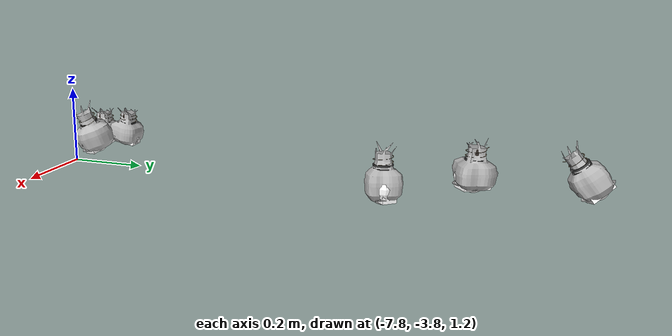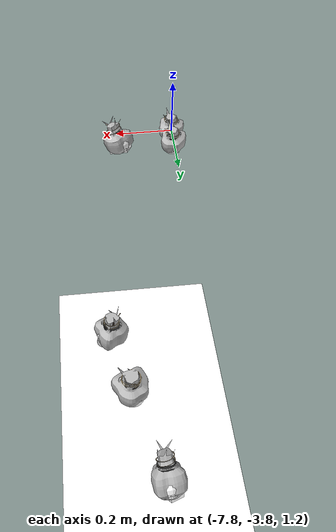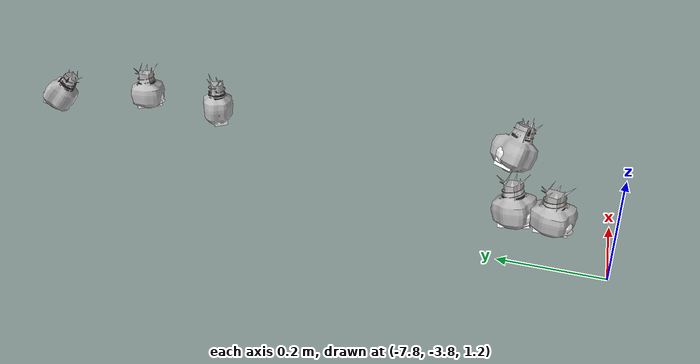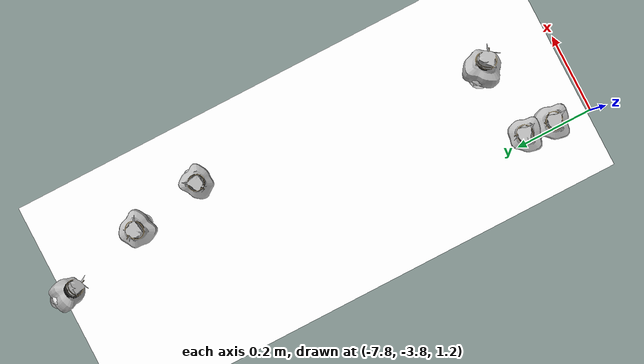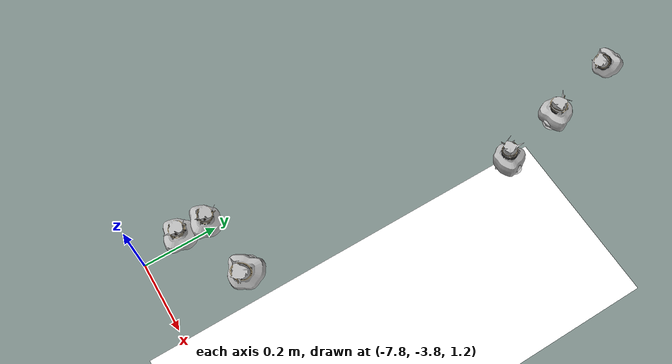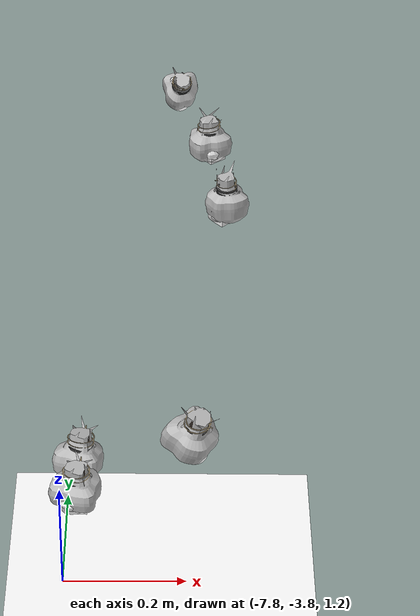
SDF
<sdf version="1.11">
 <world name="peach_orchard">
  <model name="ground">
   <static>true</static>
   <link name="link">
    <visual name="soil">
     <geometry><plane><normal>0 0 1</normal><size>32 22</size></plane></geometry>
     <material>
      <ambient>1 1 1 1</ambient>
      <diffuse>1 1 1 1</diffuse>
      <specular>0.1 0.1 0.1 1</specular>
      <pbr>
       <metal>
        <albedo_map>textures/soil_albedo.png</albedo_map>
        <normal_map type="tangent">textures/soil_normal.png</normal_map>
        <roughness>0.95</roughness>
        <metalness>0</metalness>
       </metal>
      </pbr>
     </material>
    </visual>
    <collision name="c_soil">
     <geometry><plane><normal>0 0 1</normal><size>32 22</size></plane></geometry>
    </collision>
   </link>
  </model>
  <model name="peach_tree_r0_t1_03">
   <pose>-7.60243 -3.58735 1.30034 0 0.37184 -0.78022</pose>
   <static>true</static>
   <link name="bag">
    <visual name="bag_mesh">
     <pose>0 0 0.0472823 0 0 -0</pose>
     <geometry>
      <mesh><uri>model://peach_sim/meshes/bagged_peach.glb</uri><scale>1.06944 1.30967 1.0746</scale></mesh>
     </geometry>
    </visual>
    <visual name="body">
     <pose>0 0 0.0292823 0 0 0</pose>
     <geometry><ellipsoid><radii>0.040104 0.0340513 0.0316248</radii></ellipsoid></geometry>
     <material>
      <ambient>1 1 1 1</ambient>
      <diffuse>1 1 1 1</diffuse>
      <specular>0.1 0.1 0.1 1</specular>
      <pbr>
       <metal>
        <albedo_map>textures/paper_bag_albedo.png</albedo_map>
        <normal_map type="tangent">textures/paper_bag_normal.png</normal_map>
        <roughness>0.72</roughness>
        <metalness>0</metalness>
       </metal>
      </pbr>
     </material>
    </visual>
    <visual name="bottom_fold">
     <pose>0 0 0.012 0 0 0.35</pose>
     <geometry><box><size>0.0621612 0.0391591 0.022</size></box></geometry>
     <material>
      <ambient>1 1 1 1</ambient>
      <diffuse>1 1 1 1</diffuse>
      <specular>0.1 0.1 0.1 1</specular>
      <pbr>
       <metal>
        <albedo_map>textures/paper_bag_albedo.png</albedo_map>
        <normal_map type="tangent">textures/paper_bag_normal.png</normal_map>
        <roughness>0.8</roughness>
        <metalness>0</metalness>
       </metal>
      </pbr>
     </material>
    </visual>
    <visual name="fruit">
     <pose>0 0 0.0180766 0 0 0</pose>
     <geometry><sphere><radius>0.0250396</radius></sphere></geometry>
     <material>
      <ambient>1 1 1 1</ambient>
      <diffuse>1 1 1 1</diffuse>
      <specular>0.1 0.1 0.1 1</specular>
      <pbr>
       <metal>
        <albedo_map>textures/fruit_skin_albedo.png</albedo_map>
        <normal_map type="tangent">textures/fruit_skin_normal.png</normal_map>
        <roughness>0.55</roughness>
        <metalness>0</metalness>
       </metal>
      </pbr>
     </material>
    </visual>
    <visual name="neck">
     <pose>0 0 0.0675645 0 0 0</pose>
     <geometry><cylinder><radius>0.013</radius><length>0.018</length></cylinder></geometry>
     <material>
      <ambient>1 1 1 1</ambient>
      <diffuse>1 1 1 1</diffuse>
      <specular>0.1 0.1 0.1 1</specular>
      <pbr>
       <metal>
        <albedo_map>textures/paper_bag_albedo.png</albedo_map>
        <normal_map type="tangent">textures/paper_bag_normal.png</normal_map>
        <roughness>0.75</roughness>
        <metalness>0</metalness>
       </metal>
      </pbr>
     </material>
    </visual>
    <visual name="gather">
     <pose>0 0 0.0485645 0 0 0</pose>
     <geometry><cylinder><radius>0.019</radius><length>0.02</length></cylinder></geometry>
     <material>
      <ambient>1 1 1 1</ambient>
      <diffuse>1 1 1 1</diffuse>
      <specular>0.1 0.1 0.1 1</specular>
      <pbr>
       <metal>
        <albedo_map>textures/paper_bag_albedo.png</albedo_map>
        <normal_map type="tangent">textures/paper_bag_normal.png</normal_map>
        <roughness>0.8</roughness>
        <metalness>0</metalness>
       </metal>
      </pbr>
     </material>
    </visual>
    <visual name="inner_paper">
     <pose>0 0 0.0725645 0 0 0</pose>
     <geometry><cylinder><radius>0.01</radius><length>0.008</length></cylinder></geometry>
     <material>
      <ambient>0.180392 0.14902 0.133333 1</ambient>
      <diffuse>0.180392 0.14902 0.133333 1</diffuse>
      <specular>0.1 0.1 0.1 1</specular>
     </material>
    </visual>
    <visual name="wire_0">
     <pose>0 0 0.0625645 0 0 0</pose>
     <geometry><cylinder><radius>0.0205</radius><length>0.0035</length></cylinder></geometry>
     <material>
      <ambient>0.25 0.25 0.25 1</ambient>
      <diffuse>0.25 0.25 0.25 1</diffuse>
      <specular>0.1 0.1 0.1 1</specular>
     </material>
    </visual>
    <visual name="wire_1">
     <pose>0 0 0.0695645 0 0 0</pose>
     <geometry><cylinder><radius>0.0205</radius><length>0.0035</length></cylinder></geometry>
     <material>
      <ambient>0.25 0.25 0.25 1</ambient>
      <diffuse>0.25 0.25 0.25 1</diffuse>
      <specular>0.1 0.1 0.1 1</specular>
     </material>
    </visual>
    <visual name="wire_tail">
     <pose>0.01 0 0.0705645 0 0.521618 0</pose>
     <geometry><cylinder><radius>0.0012</radius><length>0.026</length></cylinder></geometry>
     <material>
      <ambient>0.25 0.25 0.25 1</ambient>
      <diffuse>0.25 0.25 0.25 1</diffuse>
      <specular>0.1 0.1 0.1 1</specular>
     </material>
    </visual>
    <collision name="c_body">
     <pose>0 0 0.0292823 0 0 0</pose>
     <geometry><cylinder><radius>0.040104</radius><length>0.0585645</length></cylinder></geometry>
    </collision>
   </link>
  </model>
  <model name="peach_tree_r0_t1_10">
   <pose>-7.78 -3.68874 1.27 0 0.00574695 1.19921</pose>
   <static>true</static>
   <link name="bag">
    <visual name="bag_mesh">
     <pose>0 0 0.0381638 0 0 0</pose>
     <geometry>
      <mesh><uri>model://peach_sim/meshes/bagged_peach.glb</uri><scale>1.04882 1.20694 0.86736</scale></mesh>
     </geometry>
    </visual>
    <visual name="body">
     <pose>0 0 0.0201638 0 0 0</pose>
     <geometry><ellipsoid><radii>0.0393308 0.0313805 0.021777</radii></ellipsoid></geometry>
     <material>
      <ambient>1 1 1 1</ambient>
      <diffuse>1 1 1 1</diffuse>
      <specular>0.1 0.1 0.1 1</specular>
      <pbr>
       <metal>
        <albedo_map>textures/paper_bag_albedo.png</albedo_map>
        <normal_map type="tangent">textures/paper_bag_normal.png</normal_map>
        <roughness>0.72</roughness>
        <metalness>0</metalness>
       </metal>
      </pbr>
     </material>
    </visual>
    <visual name="bottom_fold">
     <pose>0 0 0.012 0 0 0.35</pose>
     <geometry><box><size>0.0609627 0.0360876 0.022</size></box></geometry>
     <material>
      <ambient>1 1 1 1</ambient>
      <diffuse>1 1 1 1</diffuse>
      <specular>0.1 0.1 0.1 1</specular>
      <pbr>
       <metal>
        <albedo_map>textures/paper_bag_albedo.png</albedo_map>
        <normal_map type="tangent">textures/paper_bag_normal.png</normal_map>
        <roughness>0.8</roughness>
        <metalness>0</metalness>
       </metal>
      </pbr>
     </material>
    </visual>
    <visual name="fruit">
     <pose>0 0 0.0179964 0 0 0</pose>
     <geometry><sphere><radius>0.0249563</radius></sphere></geometry>
     <material>
      <ambient>1 1 1 1</ambient>
      <diffuse>1 1 1 1</diffuse>
      <specular>0.1 0.1 0.1 1</specular>
      <pbr>
       <metal>
        <albedo_map>textures/fruit_skin_albedo.png</albedo_map>
        <normal_map type="tangent">textures/fruit_skin_normal.png</normal_map>
        <roughness>0.55</roughness>
        <metalness>0</metalness>
       </metal>
      </pbr>
     </material>
    </visual>
    <visual name="neck">
     <pose>0 0 0.0493277 0 0 0</pose>
     <geometry><cylinder><radius>0.013</radius><length>0.018</length></cylinder></geometry>
     <material>
      <ambient>1 1 1 1</ambient>
      <diffuse>1 1 1 1</diffuse>
      <specular>0.1 0.1 0.1 1</specular>
      <pbr>
       <metal>
        <albedo_map>textures/paper_bag_albedo.png</albedo_map>
        <normal_map type="tangent">textures/paper_bag_normal.png</normal_map>
        <roughness>0.75</roughness>
        <metalness>0</metalness>
       </metal>
      </pbr>
     </material>
    </visual>
    <visual name="gather">
     <pose>0 0 0.0303277 0 0 0</pose>
     <geometry><cylinder><radius>0.019</radius><length>0.02</length></cylinder></geometry>
     <material>
      <ambient>1 1 1 1</ambient>
      <diffuse>1 1 1 1</diffuse>
      <specular>0.1 0.1 0.1 1</specular>
      <pbr>
       <metal>
        <albedo_map>textures/paper_bag_albedo.png</albedo_map>
        <normal_map type="tangent">textures/paper_bag_normal.png</normal_map>
        <roughness>0.8</roughness>
        <metalness>0</metalness>
       </metal>
      </pbr>
     </material>
    </visual>
    <visual name="inner_paper">
     <pose>0 0 0.0543277 0 0 0</pose>
     <geometry><cylinder><radius>0.01</radius><length>0.008</length></cylinder></geometry>
     <material>
      <ambient>0.180392 0.14902 0.133333 1</ambient>
      <diffuse>0.180392 0.14902 0.133333 1</diffuse>
      <specular>0.1 0.1 0.1 1</specular>
     </material>
    </visual>
    <visual name="wire_0">
     <pose>0 0 0.0443277 0 0 0</pose>
     <geometry><cylinder><radius>0.0205</radius><length>0.0035</length></cylinder></geometry>
     <material>
      <ambient>0.25 0.25 0.25 1</ambient>
      <diffuse>0.25 0.25 0.25 1</diffuse>
      <specular>0.1 0.1 0.1 1</specular>
     </material>
    </visual>
    <visual name="wire_1">
     <pose>0 0 0.0513277 0 0 0</pose>
     <geometry><cylinder><radius>0.0205</radius><length>0.0035</length></cylinder></geometry>
     <material>
      <ambient>0.25 0.25 0.25 1</ambient>
      <diffuse>0.25 0.25 0.25 1</diffuse>
      <specular>0.1 0.1 0.1 1</specular>
     </material>
    </visual>
    <visual name="wire_tail">
     <pose>0.01 0 0.0523277 0 0.521618 0</pose>
     <geometry><cylinder><radius>0.0012</radius><length>0.026</length></cylinder></geometry>
     <material>
      <ambient>0.25 0.25 0.25 1</ambient>
      <diffuse>0.25 0.25 0.25 1</diffuse>
      <specular>0.1 0.1 0.1 1</specular>
     </material>
    </visual>
    <collision name="c_body">
     <pose>0 0 0.0201638 0 0 0</pose>
     <geometry><cylinder><radius>0.0393308</radius><length>0.0403277</length></cylinder></geometry>
    </collision>
   </link>
  </model>
  <model name="peach_tree_r0_t1_11">
   <pose>-7.78 -3.62434 1.27 0 0.177441 1.18283</pose>
   <static>true</static>
   <link name="bag">
    <visual name="bag_mesh">
     <pose>0 0 0.041682 0 0 0</pose>
     <geometry>
      <mesh><uri>model://peach_sim/meshes/bagged_peach.glb</uri><scale>1.01171 1.19319 0.947318</scale></mesh>
     </geometry>
    </visual>
    <visual name="body">
     <pose>0 0 0.023682 0 0 0</pose>
     <geometry><ellipsoid><radii>0.037939 0.031023 0.0255766</radii></ellipsoid></geometry>
     <material>
      <ambient>1 1 1 1</ambient>
      <diffuse>1 1 1 1</diffuse>
      <specular>0.1 0.1 0.1 1</specular>
      <pbr>
       <metal>
        <albedo_map>textures/paper_bag_albedo.png</albedo_map>
        <normal_map type="tangent">textures/paper_bag_normal.png</normal_map>
        <roughness>0.72</roughness>
        <metalness>0</metalness>
       </metal>
      </pbr>
     </material>
    </visual>
    <visual name="bottom_fold">
     <pose>0 0 0.012 0 0 0.35</pose>
     <geometry><box><size>0.0588055 0.0356765 0.022</size></box></geometry>
     <material>
      <ambient>1 1 1 1</ambient>
      <diffuse>1 1 1 1</diffuse>
      <specular>0.1 0.1 0.1 1</specular>
      <pbr>
       <metal>
        <albedo_map>textures/paper_bag_albedo.png</albedo_map>
        <normal_map type="tangent">textures/paper_bag_normal.png</normal_map>
        <roughness>0.8</roughness>
        <metalness>0</metalness>
       </metal>
      </pbr>
     </material>
    </visual>
    <visual name="fruit">
     <pose>0 0 0.017939 0 0 0</pose>
     <geometry><sphere><radius>0.0248966</radius></sphere></geometry>
     <material>
      <ambient>1 1 1 1</ambient>
      <diffuse>1 1 1 1</diffuse>
      <specular>0.1 0.1 0.1 1</specular>
      <pbr>
       <metal>
        <albedo_map>textures/fruit_skin_albedo.png</albedo_map>
        <normal_map type="tangent">textures/fruit_skin_normal.png</normal_map>
        <roughness>0.55</roughness>
        <metalness>0</metalness>
       </metal>
      </pbr>
     </material>
    </visual>
    <visual name="neck">
     <pose>0 0 0.056364 0 0 0</pose>
     <geometry><cylinder><radius>0.013</radius><length>0.018</length></cylinder></geometry>
     <material>
      <ambient>1 1 1 1</ambient>
      <diffuse>1 1 1 1</diffuse>
      <specular>0.1 0.1 0.1 1</specular>
      <pbr>
       <metal>
        <albedo_map>textures/paper_bag_albedo.png</albedo_map>
        <normal_map type="tangent">textures/paper_bag_normal.png</normal_map>
        <roughness>0.75</roughness>
        <metalness>0</metalness>
       </metal>
      </pbr>
     </material>
    </visual>
    <visual name="gather">
     <pose>0 0 0.037364 0 0 0</pose>
     <geometry><cylinder><radius>0.019</radius><length>0.02</length></cylinder></geometry>
     <material>
      <ambient>1 1 1 1</ambient>
      <diffuse>1 1 1 1</diffuse>
      <specular>0.1 0.1 0.1 1</specular>
      <pbr>
       <metal>
        <albedo_map>textures/paper_bag_albedo.png</albedo_map>
        <normal_map type="tangent">textures/paper_bag_normal.png</normal_map>
        <roughness>0.8</roughness>
        <metalness>0</metalness>
       </metal>
      </pbr>
     </material>
    </visual>
    <visual name="inner_paper">
     <pose>0 0 0.061364 0 0 0</pose>
     <geometry><cylinder><radius>0.01</radius><length>0.008</length></cylinder></geometry>
     <material>
      <ambient>0.180392 0.14902 0.133333 1</ambient>
      <diffuse>0.180392 0.14902 0.133333 1</diffuse>
      <specular>0.1 0.1 0.1 1</specular>
     </material>
    </visual>
    <visual name="wire_0">
     <pose>0 0 0.051364 0 0 0</pose>
     <geometry><cylinder><radius>0.0205</radius><length>0.0035</length></cylinder></geometry>
     <material>
      <ambient>0.25 0.25 0.25 1</ambient>
      <diffuse>0.25 0.25 0.25 1</diffuse>
      <specular>0.1 0.1 0.1 1</specular>
     </material>
    </visual>
    <visual name="wire_1">
     <pose>0 0 0.058364 0 0 0</pose>
     <geometry><cylinder><radius>0.0205</radius><length>0.0035</length></cylinder></geometry>
     <material>
      <ambient>0.25 0.25 0.25 1</ambient>
      <diffuse>0.25 0.25 0.25 1</diffuse>
      <specular>0.1 0.1 0.1 1</specular>
     </material>
    </visual>
    <visual name="wire_tail">
     <pose>0.01 0 0.059364 0 0.521618 0</pose>
     <geometry><cylinder><radius>0.0012</radius><length>0.026</length></cylinder></geometry>
     <material>
      <ambient>0.25 0.25 0.25 1</ambient>
      <diffuse>0.25 0.25 0.25 1</diffuse>
      <specular>0.1 0.1 0.1 1</specular>
     </material>
    </visual>
    <collision name="c_body">
     <pose>0 0 0.023682 0 0 0</pose>
     <geometry><cylinder><radius>0.037939</radius><length>0.047364</length></cylinder></geometry>
    </collision>
   </link>
  </model>
  <model name="peach_tree_r0_t2_01">
   <pose>-7.61498 -2.4701 1.29611 0 0.656781 -1.44105</pose>
   <static>true</static>
   <link name="bag">
    <visual name="bag_mesh">
     <pose>0 0 0.0488143 0 0 -0</pose>
     <geometry>
      <mesh><uri>model://peach_sim/meshes/bagged_peach.glb</uri><scale>0.949904 1.05637 1.10942</scale></mesh>
     </geometry>
    </visual>
    <visual name="body">
     <pose>0 0 0.0308143 0 0 0</pose>
     <geometry><ellipsoid><radii>0.0356214 0.0274657 0.0332795</radii></ellipsoid></geometry>
     <material>
      <ambient>1 1 1 1</ambient>
      <diffuse>1 1 1 1</diffuse>
      <specular>0.1 0.1 0.1 1</specular>
      <pbr>
       <metal>
        <albedo_map>textures/paper_bag_albedo.png</albedo_map>
        <normal_map type="tangent">textures/paper_bag_normal.png</normal_map>
        <roughness>0.72</roughness>
        <metalness>0</metalness>
       </metal>
      </pbr>
     </material>
    </visual>
    <visual name="bottom_fold">
     <pose>0 0 0.012 0 0 0.35</pose>
     <geometry><box><size>0.0552131 0.0315855 0.022</size></box></geometry>
     <material>
      <ambient>1 1 1 1</ambient>
      <diffuse>1 1 1 1</diffuse>
      <specular>0.1 0.1 0.1 1</specular>
      <pbr>
       <metal>
        <albedo_map>textures/paper_bag_albedo.png</albedo_map>
        <normal_map type="tangent">textures/paper_bag_normal.png</normal_map>
        <roughness>0.8</roughness>
        <metalness>0</metalness>
       </metal>
      </pbr>
     </material>
    </visual>
    <visual name="fruit">
     <pose>0 0 0.0177786 0 0 0</pose>
     <geometry><sphere><radius>0.0247297</radius></sphere></geometry>
     <material>
      <ambient>1 1 1 1</ambient>
      <diffuse>1 1 1 1</diffuse>
      <specular>0.1 0.1 0.1 1</specular>
      <pbr>
       <metal>
        <albedo_map>textures/fruit_skin_albedo.png</albedo_map>
        <normal_map type="tangent">textures/fruit_skin_normal.png</normal_map>
        <roughness>0.55</roughness>
        <metalness>0</metalness>
       </metal>
      </pbr>
     </material>
    </visual>
    <visual name="neck">
     <pose>0 0 0.0706286 0 0 0</pose>
     <geometry><cylinder><radius>0.013</radius><length>0.018</length></cylinder></geometry>
     <material>
      <ambient>1 1 1 1</ambient>
      <diffuse>1 1 1 1</diffuse>
      <specular>0.1 0.1 0.1 1</specular>
      <pbr>
       <metal>
        <albedo_map>textures/paper_bag_albedo.png</albedo_map>
        <normal_map type="tangent">textures/paper_bag_normal.png</normal_map>
        <roughness>0.75</roughness>
        <metalness>0</metalness>
       </metal>
      </pbr>
     </material>
    </visual>
    <visual name="gather">
     <pose>0 0 0.0516286 0 0 0</pose>
     <geometry><cylinder><radius>0.019</radius><length>0.02</length></cylinder></geometry>
     <material>
      <ambient>1 1 1 1</ambient>
      <diffuse>1 1 1 1</diffuse>
      <specular>0.1 0.1 0.1 1</specular>
      <pbr>
       <metal>
        <albedo_map>textures/paper_bag_albedo.png</albedo_map>
        <normal_map type="tangent">textures/paper_bag_normal.png</normal_map>
        <roughness>0.8</roughness>
        <metalness>0</metalness>
       </metal>
      </pbr>
     </material>
    </visual>
    <visual name="inner_paper">
     <pose>0 0 0.0756286 0 0 0</pose>
     <geometry><cylinder><radius>0.01</radius><length>0.008</length></cylinder></geometry>
     <material>
      <ambient>0.180392 0.14902 0.133333 1</ambient>
      <diffuse>0.180392 0.14902 0.133333 1</diffuse>
      <specular>0.1 0.1 0.1 1</specular>
     </material>
    </visual>
    <visual name="wire_0">
     <pose>0 0 0.0656286 0 0 0</pose>
     <geometry><cylinder><radius>0.0205</radius><length>0.0035</length></cylinder></geometry>
     <material>
      <ambient>0.25 0.25 0.25 1</ambient>
      <diffuse>0.25 0.25 0.25 1</diffuse>
      <specular>0.1 0.1 0.1 1</specular>
     </material>
    </visual>
    <visual name="wire_1">
     <pose>0 0 0.0726286 0 0 0</pose>
     <geometry><cylinder><radius>0.0205</radius><length>0.0035</length></cylinder></geometry>
     <material>
      <ambient>0.25 0.25 0.25 1</ambient>
      <diffuse>0.25 0.25 0.25 1</diffuse>
      <specular>0.1 0.1 0.1 1</specular>
     </material>
    </visual>
    <visual name="wire_tail">
     <pose>0.01 0 0.0736286 0 0.521618 0</pose>
     <geometry><cylinder><radius>0.0012</radius><length>0.026</length></cylinder></geometry>
     <material>
      <ambient>0.25 0.25 0.25 1</ambient>
      <diffuse>0.25 0.25 0.25 1</diffuse>
      <specular>0.1 0.1 0.1 1</specular>
     </material>
    </visual>
    <collision name="c_body">
     <pose>0 0 0.0308143 0 0 0</pose>
     <geometry><cylinder><radius>0.0356214</radius><length>0.0616286</length></cylinder></geometry>
    </collision>
   </link>
  </model>
  <model name="peach_tree_r0_t2_02">
   <pose>-7.55378 -2.70878 1.30286 0 0.036851 1.87994</pose>
   <static>true</static>
   <link name="bag">
    <visual name="bag_mesh">
     <pose>0 0 0.0425397 0 0 0</pose>
     <geometry>
      <mesh><uri>model://peach_sim/meshes/bagged_peach.glb</uri><scale>1.03195 1.2073 0.966812</scale></mesh>
     </geometry>
    </visual>
    <visual name="body">
     <pose>0 0 0.0245397 0 0 0</pose>
     <geometry><ellipsoid><radii>0.038698 0.0313897 0.0265029</radii></ellipsoid></geometry>
     <material>
      <ambient>1 1 1 1</ambient>
      <diffuse>1 1 1 1</diffuse>
      <specular>0.1 0.1 0.1 1</specular>
      <pbr>
       <metal>
        <albedo_map>textures/paper_bag_albedo.png</albedo_map>
        <normal_map type="tangent">textures/paper_bag_normal.png</normal_map>
        <roughness>0.72</roughness>
        <metalness>0</metalness>
       </metal>
      </pbr>
     </material>
    </visual>
    <visual name="bottom_fold">
     <pose>0 0 0.012 0 0 0.35</pose>
     <geometry><box><size>0.0599819 0.0360982 0.022</size></box></geometry>
     <material>
      <ambient>1 1 1 1</ambient>
      <diffuse>1 1 1 1</diffuse>
      <specular>0.1 0.1 0.1 1</specular>
      <pbr>
       <metal>
        <albedo_map>textures/paper_bag_albedo.png</albedo_map>
        <normal_map type="tangent">textures/paper_bag_normal.png</normal_map>
        <roughness>0.8</roughness>
        <metalness>0</metalness>
       </metal>
      </pbr>
     </material>
    </visual>
    <visual name="fruit">
     <pose>0 0 0.0185708 0 0 0</pose>
     <geometry><sphere><radius>0.0255536</radius></sphere></geometry>
     <material>
      <ambient>1 1 1 1</ambient>
      <diffuse>1 1 1 1</diffuse>
      <specular>0.1 0.1 0.1 1</specular>
      <pbr>
       <metal>
        <albedo_map>textures/fruit_skin_albedo.png</albedo_map>
        <normal_map type="tangent">textures/fruit_skin_normal.png</normal_map>
        <roughness>0.55</roughness>
        <metalness>0</metalness>
       </metal>
      </pbr>
     </material>
    </visual>
    <visual name="neck">
     <pose>0 0 0.0580794 0 0 0</pose>
     <geometry><cylinder><radius>0.013</radius><length>0.018</length></cylinder></geometry>
     <material>
      <ambient>1 1 1 1</ambient>
      <diffuse>1 1 1 1</diffuse>
      <specular>0.1 0.1 0.1 1</specular>
      <pbr>
       <metal>
        <albedo_map>textures/paper_bag_albedo.png</albedo_map>
        <normal_map type="tangent">textures/paper_bag_normal.png</normal_map>
        <roughness>0.75</roughness>
        <metalness>0</metalness>
       </metal>
      </pbr>
     </material>
    </visual>
    <visual name="gather">
     <pose>0 0 0.0390794 0 0 0</pose>
     <geometry><cylinder><radius>0.019</radius><length>0.02</length></cylinder></geometry>
     <material>
      <ambient>1 1 1 1</ambient>
      <diffuse>1 1 1 1</diffuse>
      <specular>0.1 0.1 0.1 1</specular>
      <pbr>
       <metal>
        <albedo_map>textures/paper_bag_albedo.png</albedo_map>
        <normal_map type="tangent">textures/paper_bag_normal.png</normal_map>
        <roughness>0.8</roughness>
        <metalness>0</metalness>
       </metal>
      </pbr>
     </material>
    </visual>
    <visual name="inner_paper">
     <pose>0 0 0.0630794 0 0 0</pose>
     <geometry><cylinder><radius>0.01</radius><length>0.008</length></cylinder></geometry>
     <material>
      <ambient>0.180392 0.14902 0.133333 1</ambient>
      <diffuse>0.180392 0.14902 0.133333 1</diffuse>
      <specular>0.1 0.1 0.1 1</specular>
     </material>
    </visual>
    <visual name="wire_0">
     <pose>0 0 0.0530794 0 0 0</pose>
     <geometry><cylinder><radius>0.0205</radius><length>0.0035</length></cylinder></geometry>
     <material>
      <ambient>0.25 0.25 0.25 1</ambient>
      <diffuse>0.25 0.25 0.25 1</diffuse>
      <specular>0.1 0.1 0.1 1</specular>
     </material>
    </visual>
    <visual name="wire_1">
     <pose>0 0 0.0600794 0 0 0</pose>
     <geometry><cylinder><radius>0.0205</radius><length>0.0035</length></cylinder></geometry>
     <material>
      <ambient>0.25 0.25 0.25 1</ambient>
      <diffuse>0.25 0.25 0.25 1</diffuse>
      <specular>0.1 0.1 0.1 1</specular>
     </material>
    </visual>
    <visual name="wire_tail">
     <pose>0.01 0 0.0610794 0 0.521618 0</pose>
     <geometry><cylinder><radius>0.0012</radius><length>0.026</length></cylinder></geometry>
     <material>
      <ambient>0.25 0.25 0.25 1</ambient>
      <diffuse>0.25 0.25 0.25 1</diffuse>
      <specular>0.1 0.1 0.1 1</specular>
     </material>
    </visual>
    <collision name="c_body">
     <pose>0 0 0.0245397 0 0 0</pose>
     <geometry><cylinder><radius>0.038698</radius><length>0.0490794</length></cylinder></geometry>
    </collision>
   </link>
  </model>
  <model name="peach_tree_r0_t2_03">
   <pose>-7.51831 -2.87943 1.27 0 0.0440132 -2.76156</pose>
   <static>true</static>
   <link name="bag">
    <visual name="bag_mesh">
     <pose>0 0 0.0495878 0 0 -0</pose>
     <geometry>
      <mesh><uri>model://peach_sim/meshes/bagged_peach.glb</uri><scale>1.0005 1.06994 1.12699</scale></mesh>
     </geometry>
    </visual>
    <visual name="body">
     <pose>0 0 0.0315878 0 0 0</pose>
     <geometry><ellipsoid><radii>0.0375189 0.0278183 0.0341148</radii></ellipsoid></geometry>
     <material>
      <ambient>1 1 1 1</ambient>
      <diffuse>1 1 1 1</diffuse>
      <specular>0.1 0.1 0.1 1</specular>
      <pbr>
       <metal>
        <albedo_map>textures/paper_bag_albedo.png</albedo_map>
        <normal_map type="tangent">textures/paper_bag_normal.png</normal_map>
        <roughness>0.72</roughness>
        <metalness>0</metalness>
       </metal>
      </pbr>
     </material>
    </visual>
    <visual name="bottom_fold">
     <pose>0 0 0.012 0 0 0.35</pose>
     <geometry><box><size>0.0581543 0.0319911 0.022</size></box></geometry>
     <material>
      <ambient>1 1 1 1</ambient>
      <diffuse>1 1 1 1</diffuse>
      <specular>0.1 0.1 0.1 1</specular>
      <pbr>
       <metal>
        <albedo_map>textures/paper_bag_albedo.png</albedo_map>
        <normal_map type="tangent">textures/paper_bag_normal.png</normal_map>
        <roughness>0.8</roughness>
        <metalness>0</metalness>
       </metal>
      </pbr>
     </material>
    </visual>
    <visual name="fruit">
     <pose>0 0 0.0186097 0 0 0</pose>
     <geometry><sphere><radius>0.0255941</radius></sphere></geometry>
     <material>
      <ambient>1 1 1 1</ambient>
      <diffuse>1 1 1 1</diffuse>
      <specular>0.1 0.1 0.1 1</specular>
      <pbr>
       <metal>
        <albedo_map>textures/fruit_skin_albedo.png</albedo_map>
        <normal_map type="tangent">textures/fruit_skin_normal.png</normal_map>
        <roughness>0.55</roughness>
        <metalness>0</metalness>
       </metal>
      </pbr>
     </material>
    </visual>
    <visual name="neck">
     <pose>0 0 0.0721755 0 0 0</pose>
     <geometry><cylinder><radius>0.013</radius><length>0.018</length></cylinder></geometry>
     <material>
      <ambient>1 1 1 1</ambient>
      <diffuse>1 1 1 1</diffuse>
      <specular>0.1 0.1 0.1 1</specular>
      <pbr>
       <metal>
        <albedo_map>textures/paper_bag_albedo.png</albedo_map>
        <normal_map type="tangent">textures/paper_bag_normal.png</normal_map>
        <roughness>0.75</roughness>
        <metalness>0</metalness>
       </metal>
      </pbr>
     </material>
    </visual>
    <visual name="gather">
     <pose>0 0 0.0531755 0 0 0</pose>
     <geometry><cylinder><radius>0.019</radius><length>0.02</length></cylinder></geometry>
     <material>
      <ambient>1 1 1 1</ambient>
      <diffuse>1 1 1 1</diffuse>
      <specular>0.1 0.1 0.1 1</specular>
      <pbr>
       <metal>
        <albedo_map>textures/paper_bag_albedo.png</albedo_map>
        <normal_map type="tangent">textures/paper_bag_normal.png</normal_map>
        <roughness>0.8</roughness>
        <metalness>0</metalness>
       </metal>
      </pbr>
     </material>
    </visual>
    <visual name="inner_paper">
     <pose>0 0 0.0771755 0 0 0</pose>
     <geometry><cylinder><radius>0.01</radius><length>0.008</length></cylinder></geometry>
     <material>
      <ambient>0.180392 0.14902 0.133333 1</ambient>
      <diffuse>0.180392 0.14902 0.133333 1</diffuse>
      <specular>0.1 0.1 0.1 1</specular>
     </material>
    </visual>
    <visual name="wire_0">
     <pose>0 0 0.0671755 0 0 0</pose>
     <geometry><cylinder><radius>0.0205</radius><length>0.0035</length></cylinder></geometry>
     <material>
      <ambient>0.25 0.25 0.25 1</ambient>
      <diffuse>0.25 0.25 0.25 1</diffuse>
      <specular>0.1 0.1 0.1 1</specular>
     </material>
    </visual>
    <visual name="wire_1">
     <pose>0 0 0.0741755 0 0 0</pose>
     <geometry><cylinder><radius>0.0205</radius><length>0.0035</length></cylinder></geometry>
     <material>
      <ambient>0.25 0.25 0.25 1</ambient>
      <diffuse>0.25 0.25 0.25 1</diffuse>
      <specular>0.1 0.1 0.1 1</specular>
     </material>
    </visual>
    <visual name="wire_tail">
     <pose>0.01 0 0.0751755 0 0.521618 0</pose>
     <geometry><cylinder><radius>0.0012</radius><length>0.026</length></cylinder></geometry>
     <material>
      <ambient>0.25 0.25 0.25 1</ambient>
      <diffuse>0.25 0.25 0.25 1</diffuse>
      <specular>0.1 0.1 0.1 1</specular>
     </material>
    </visual>
    <collision name="c_body">
     <pose>0 0 0.0315878 0 0 0</pose>
     <geometry><cylinder><radius>0.0375189</radius><length>0.0631755</length></cylinder></geometry>
    </collision>
   </link>
  </model>
 </world>
</sdf>
